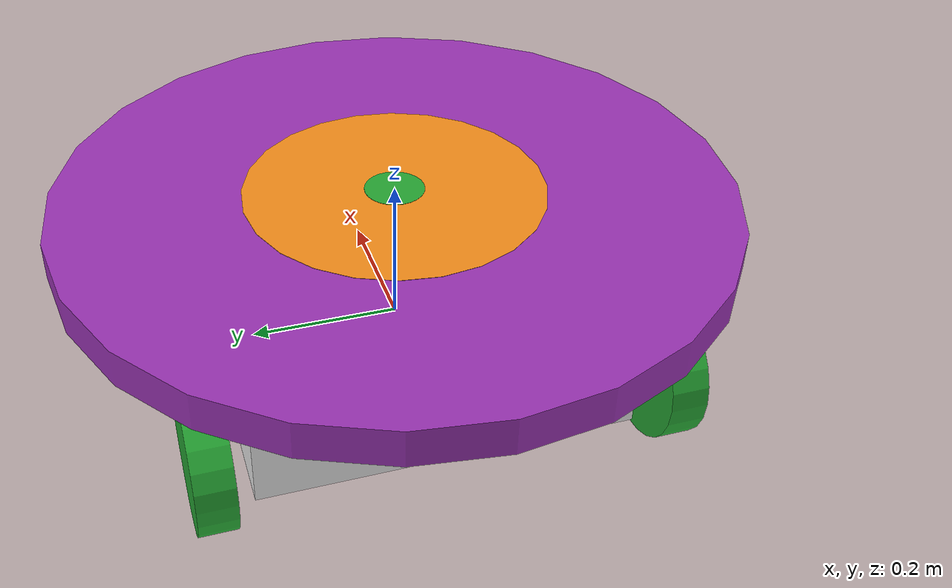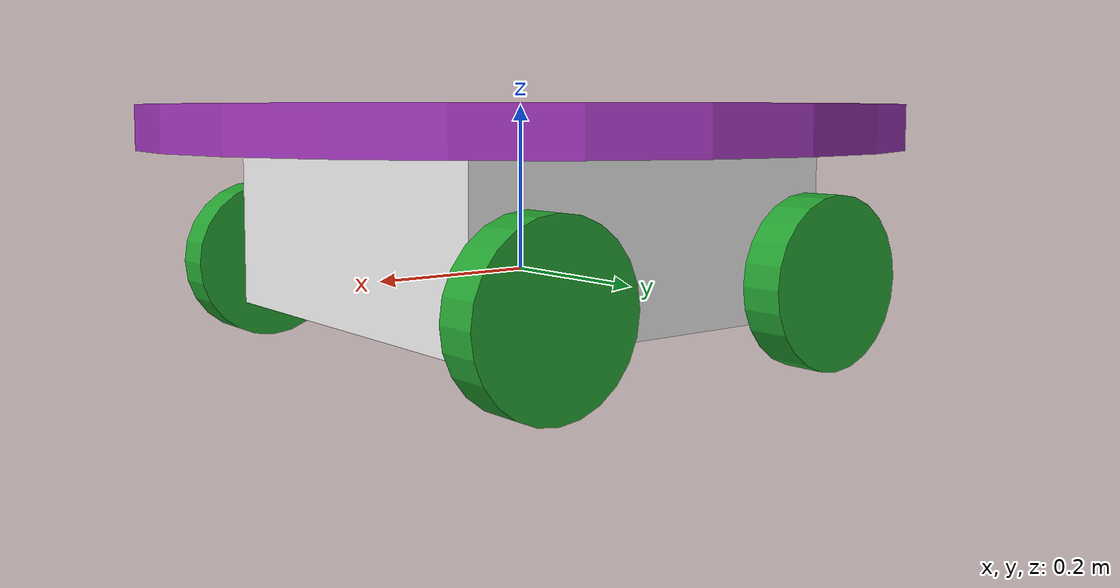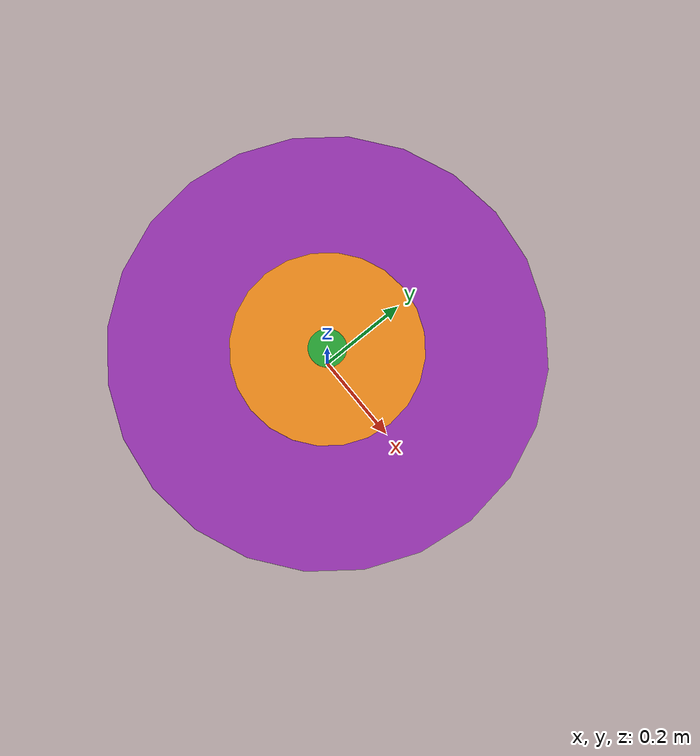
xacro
<?xml version='1.0'?>

<robot name="atom" xmlns:xacro="http://www.ros.org/wiki/xacro">
	<xacro:property name="robot_name" value="atom" />
	<xacro:property name="robot_chassis_mass" value="15"/>
	<xacro:property name="robot_chassis_length" value="0.2"/>
	<xacro:property name="robot_chassis_radius" value="0.25"/>
	<xacro:property name="robot_caster_wheel_radius" value="0.05"/>
	<xacro:property name="robot_caster_wheel_radius_collision" value="0.0499"/>

	<xacro:property name="robot_wheel_mass" value="5"/>
	<xacro:property name="robot_wheel_length" value="0.05"/>
	<xacro:property name="robot_wheel_radius" value="0.1"/>

	<xacro:property name="outer_marker_mass" value="1.5"/>
	<xacro:property name="outer_marker_radius" value="0.45"/>

	<xacro:property name="middle_marker_mass" value="1.5"/>
	<xacro:property name="middle_marker_radius" value="0.2"/>

	<xacro:property name="inner_marker_mass" value="0.5"/>
	<xacro:property name="inner_marker_radius" value="0.04"/>

	<xacro:property name="camera_mass" value="0.1"/>
	<xacro:property name="hokoyu_mass" value="1e-5"/>

	<!-- Make Chassis of Bot -->
	<link name="chassis">
		<pose>0 0 0.1 0 0 0</pose>

		<inertial>
			<mass value="${robot_chassis_mass}"/>
      		<origin xyz="0.0 0 0" rpy=" 0 0 0"/>

      		<inertia
      			ixx="0.147116667" ixy="0" ixz="0"
      			iyy="0.334951167" iyz="0"
      			izz="0.3978345"
      		/>
		</inertial>

		<collision name="collision">
			<origin xyz="0 0 0.05" rpy=" 0 0 0"/>
			<geometry>
				<box size="0.5 0.5 0.2"/>
			</geometry>
		</collision>

		<visual name="chassis_visual">
			<origin xyz="0 0 0.05" rpy=" 0 0 0"/>
			<geometry>
				<box size="0.5 0.5 0.2"/>
			</geometry>

		</visual>

	</link>

	<!-- OUTER MARKER -->
	<link name="outer_marker">
		<inertial>
			<mass value="${outer_marker_mass}"/>
			<origin xyz="0 0 0" rpy="0 0 0"/>
			<inertia
				ixx="0.1" ixy="0" ixz="0"
      			iyy="0.1" iyz="0"
      			izz="0.1"
			/>
		</inertial>

		<visual>
			<origin xyz="0 0 0" rpy="0 0 0"/>
			<geometry>
				<cylinder radius="${outer_marker_radius}" length="0.05"/>
			</geometry>
		</visual>

		<collision>
			<origin xyz="0 0 0" rpy="0 0 0"/>
			<geometry>
				<cylinder radius="${outer_marker_radius}" length="0.05"/>
			</geometry>
		</collision>
	</link>

	<!-- OUTER MARKER -->
	<link name="middle_marker">
		<inertial>
			<mass value="${middle_marker_mass}"/>
			<origin xyz="0 0 0" rpy="0 0 0"/>
			<inertia
				ixx="0.1" ixy="0" ixz="0"
      			iyy="0.1" iyz="0"
      			izz="0.1"
			/>
		</inertial>

		<visual>
			<origin xyz="0 0 0" rpy="0 0 0"/>
			<geometry>
				<cylinder radius="${middle_marker_radius}" length="0.051"/>
			</geometry>
		</visual>

		<collision>
			<origin xyz="0 0 0" rpy="0 0 0"/>
			<geometry>
				<cylinder radius="${middle_marker_radius}" length="0.05"/>
			</geometry>
		</collision>
	</link>

	<!-- INNER MARKER -->
	<link name="inner_marker">
		<inertial>
			<mass value="${inner_marker_mass}"/>
			<origin xyz="0 0 0" rpy="0 0 0"/>
			<inertia
				ixx="0.1" ixy="0" ixz="0"
      			iyy="0.1" iyz="0"
      			izz="0.1"
			/>
		</inertial>

		<visual>
			<origin xyz="0 0 0" rpy="0 0 0"/>
			<geometry>
				<cylinder radius="${inner_marker_radius}" length="0.052"/>
			</geometry>
		</visual>

		<collision>
			<origin xyz="0 0 0" rpy="0 0 0"/>
			<geometry>
				<cylinder radius="${inner_marker_radius}" length="0.05"/>
			</geometry>
		</collision>
	</link>

	<!-- Right Wheel Back -->
	<link name="right_wheel_back">
		<inertial>
			<mass value="${robot_wheel_mass}"/>
			<origin xyz="0 0 0" rpy="0 1.5707 1.5707"/>
			<inertia
				ixx="0.1" ixy="0.0" ixz="0.0"
				iyy="0.1" iyz="0.0"
				izz="0.1"
			/>
		</inertial>

		<visual>
			<origin xyz="0 0 0" rpy="0 1.5707 1.5707"/>
			<geometry>
				<cylinder radius="${robot_wheel_radius}" length="${robot_wheel_length}"/>
			</geometry>
		</visual>

		<collision>
			<origin xyz="0 0 0" rpy="0 1.5707 1.5707"/>
			<geometry>
				<cylinder radius="${robot_wheel_radius}" length="${robot_wheel_length}"/>
			</geometry>
		</collision>

	</link>

	<!-- Right Wheel Front-->
	<link name="right_wheel_front">
		<inertial>
			<mass value="${robot_wheel_mass}"/>
			<origin xyz="0 0 0" rpy="0 1.5707 1.5707"/>
			<inertia
				ixx="0.1" ixy="0.0" ixz="0.0"
				iyy="0.1" iyz="0.0"
				izz="0.1"
			/>
		</inertial>

		<visual>
			<origin xyz="0 0 0" rpy="0 1.5707 1.5707"/>
			<geometry>
				<cylinder radius="${robot_wheel_radius}" length="${robot_wheel_length}"/>
			</geometry>
		</visual>

		<collision>
			<origin xyz="0 0 0" rpy="0 1.5707 1.5707"/>
			<geometry>
				<cylinder radius="${robot_wheel_radius}" length="${robot_wheel_length}"/>
			</geometry>
		</collision>

	</link>

	<!-- Left wheel Back-->
	<link name="left_wheel_back">
		<inertial>
			<mass value="${robot_wheel_mass}"/>
			<origin xyz="0 0 0" rpy="0 1.5707 1.5707"/>
			<inertia
				ixx="0.1" ixy="0.0" ixz="0.0"
				iyy="0.1" iyz="0.0"
				izz="0.1"
			/>
		</inertial>

		<visual>
			<origin xyz="0 0 0" rpy="0 1.5707 1.5707"/>
			<geometry>
				<cylinder radius="${robot_wheel_radius}" length="${robot_wheel_length}"/>
			</geometry>
		</visual>

		<collision>
			<origin xyz="0 0 0" rpy="0 1.5707 1.5707"/>
			<geometry>
				<cylinder radius="${robot_wheel_radius}" length="${robot_wheel_length}"/>
			</geometry>
		</collision>

	</link>

	<!-- Left wheel Front-->
	<link name="left_wheel_front">
		<inertial>
			<mass value="${robot_wheel_mass}"/>
			<origin xyz="0 0 0" rpy="0 1.5707 1.5707"/>
			<inertia
				ixx="0.1" ixy="0.0" ixz="0.0"
				iyy="0.1" iyz="0.0"
				izz="0.1"
			/>
		</inertial>

		<visual>
			<origin xyz="0 0 0" rpy="0 1.5707 1.5707"/>
			<geometry>
				<cylinder radius="${robot_wheel_radius}" length="${robot_wheel_length}"/>
			</geometry>
		</visual>

		<collision>
			<origin xyz="0 0 0" rpy="0 1.5707 1.5707"/>
			<geometry>
				<cylinder radius="${robot_wheel_radius}" length="${robot_wheel_length}"/>
			</geometry>
		</collision>

	</link>

	<!-- Hokuyo Lidar -->
	<link name="hokuyo">
		<inertial>
			<mass value="${hokoyu_mass}"/>
			<origin xyz="0 0 0" rpy="0 0 0"/>

			<inertia
		        ixx="1e-6" ixy="0.0" ixz="0.0"
		        iyy="1e-6" iyz="0.0"
		        izz="1e-6"
		      />
		</inertial>

	</link>

	<!-- Project center to the ground -->
	<link name="robot_footprint"></link>

	<!-- Define Joints -->

	<!-- Right Wheel Joint Back-->
	<joint type="continuous" name="right_wheel_hinge_back">
	    <origin xyz="-0.2 -0.30 0" rpy="0 0 0" />
	    <parent link="chassis"/>
	    <child link="right_wheel_back" />
	    <axis xyz="0 1 0" rpy="0 0 0" />
	    <limit effort="10000" velocity="1000" />
	    <dynamics damping="1.0" friction="1.0" />
	</joint>

	<!-- Right Wheel Joint Front-->
	<joint type="continuous" name="right_wheel_hinge_front">
	    <origin xyz="0.2 -0.30 0" rpy="0 0 0" />
	    <parent link="chassis"/>
	    <child link="right_wheel_front" />
	    <axis xyz="0 1 0" rpy="0 0 0" />
	    <limit effort="10000" velocity="1000" />
	    <dynamics damping="1.0" friction="1.0" />
	</joint>

	<!-- Left Wheel Joint Back-->
	<joint type="continuous" name="left_wheel_hinge_back">
	    <origin xyz="-0.2 0.30 0" rpy="0 0 0" />
	    <parent link="chassis"/>
	    <child link="left_wheel_back" />
	    <axis xyz="0 1 0" rpy="0 0 0" />
	    <limit effort="10000" velocity="1000" />
	    <dynamics damping="1.0" friction="1.0" />
	</joint>

	<!-- Left Wheel Joint Front-->
	<joint type="continuous" name="left_wheel_hinge_front">
	    <origin xyz="0.2 0.30 0" rpy="0 0 0" />
	    <parent link="chassis"/>
	    <child link="left_wheel_front" />
	    <axis xyz="0 1 0" rpy="0 0 0" />
	    <limit effort="10000" velocity="1000" />
	    <dynamics damping="1.0" friction="1.0" />
	</joint>

	<!-- Hokoyu Joint -->
	<joint name="hokuyo_joint" type="fixed">
	    <origin xyz="0.2 0 0.2" rpy="0 0 0" />
	    <parent link="chassis"/>
	    <child link="hokuyo" />
	    <axis xyz="0 1 0"/>
	</joint>

	<joint name="robot_footprint_joint" type="fixed">
		<origin xyz="0 0 0" rpy="0 0 0" />
		<parent link="robot_footprint"/>
		<child link="chassis" />
	</joint>

	<!-- ...................MARKERRRRRRRRR JOINT.................... -->
	<joint name="outer_marker_joint" type="fixed">
		<origin xyz="0 0 0.175"/>
		<parent link="chassis"/>
		<child link="outer_marker"/>
	</joint>

	<joint name="middle_marker_joint" type="fixed">
		<origin xyz="0 0 0.175"/>
		<parent link="chassis"/>
		<child link="middle_marker"/>
	</joint>

	<joint name="inner_marker_joint" type="fixed">
		<origin xyz="0 0 0.175"/>
		<parent link="chassis"/>
		<child link="inner_marker"/>
	</joint>
	<!-- ...................MARKERRRRRRRRR JOINT.................... -->

	<!-- Color of bot -->
	<gazebo reference="left_wheel_front">
		<material>Gazebo/Green</material>
		<kp>1000000.0</kp> <!-- kp and kd for rubber -->
		<kd>100.0</kd>
		<mu1>1.0</mu1>
		<mu2>1.0</mu2>
		<maxVel>1.0</maxVel>
		<minDepth>0.00</minDepth>
	</gazebo>

	<gazebo reference="left_wheel_back">
		<material>Gazebo/Green</material>
		<kp>1000000.0</kp> <!-- kp and kd for rubber -->
		<kd>100.0</kd>
		<mu1>1.0</mu1>
		<mu2>1.0</mu2>
		<maxVel>1.0</maxVel>
		<minDepth>0.00</minDepth>
	</gazebo>

	<gazebo reference="right_wheel_front">
		<material>Gazebo/Green</material>
		<kp>1000000.0</kp> <!-- kp and kd for rubber -->
		<kd>100.0</kd>
		<mu1>1.0</mu1>
		<mu2>1.0</mu2>
		<maxVel>1.0</maxVel>
		<minDepth>0.00</minDepth>
	</gazebo>
	<gazebo reference="right_wheel_back">
		<material>Gazebo/Green</material>
		<kp>1000000.0</kp> <!-- kp and kd for rubber -->
		<kd>100.0</kd>
		<mu1>1.0</mu1>
		<mu2>1.0</mu2>
		<maxVel>1.0</maxVel>
		<minDepth>0.00</minDepth>
	</gazebo>

	<gazebo reference="outer_marker">
		<material>Gazebo/Purple</material>
		<kp>1000000.0</kp>
		<kd>100.0</kd>
		<mu1>1.0</mu1>
		<mu2>1.0</mu2>
		<maxVel>1.0</maxVel>
		<minDepth>0.00</minDepth>
	</gazebo>

	<gazebo reference="middle_marker">
		<material>Gazebo/Orange</material>
		<kp>1000000.0</kp>
		<kd>100.0</kd>
		<mu1>1.0</mu1>
		<mu2>1.0</mu2>
		<maxVel>1.0</maxVel>
		<minDepth>0.00</minDepth>
	</gazebo>

	<gazebo reference="inner_marker">
		<material>Gazebo/Green</material>
		<kp>1000000.0</kp>
		<kd>100.0</kd>
		<mu1>1.0</mu1>
		<mu2>1.0</mu2>
		<maxVel>1.0</maxVel>
		<minDepth>0.00</minDepth>
	</gazebo>

	<gazebo reference="chassis">
		<material>Gazebo/White</material>
	</gazebo>

	<!-- Motor, Camera and Lidar Simulation -->
	<xacro:include filename="$(find atom)/urdf/atom.gazebo" />

</robot>
